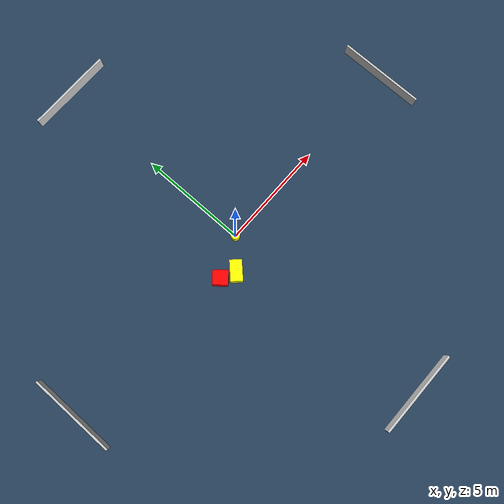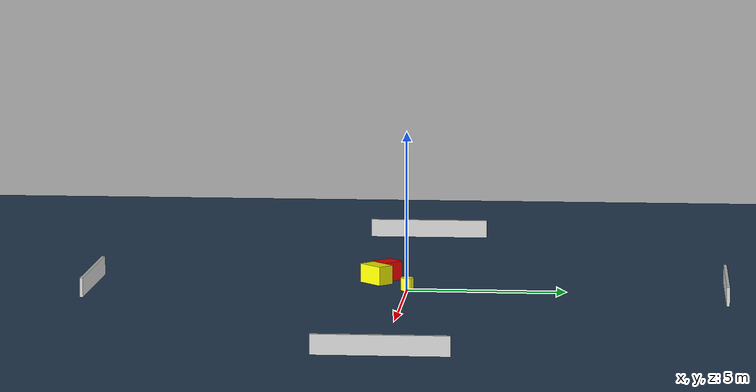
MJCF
<?xml version="1.0" ?>
<mujoco model="generated_environment">
  <option timestep="0.01" integrator="RK4" cone="elliptic"/>
  <default>
    <geom density="1"/>
  </default>
  <asset>
    <texture builtin="gradient" height="3072" name="skybox" rgb1="0.3 0.5 0.7" rgb2="0 0 0" type="skybox" width="512"/>
    <texture builtin="checker" height="300" name="groundplane" rgb1="0.2 0.3 0.4" rgb2="0.1 0.2 0.3" type="2d" width="300"/>
    <material name="groundplane" reflectance="0.2" texrepeat="5 5" texture="groundplane"/>
  </asset>
  <worldbody>
    <light dir="0 0 -1" directional="true" pos="0 0 1.5"/>
    <geom condim="3" friction="0.5 0.005 0.001" material="groundplane" name="floor" pos="0 0 0" size="0 0 0.05" type="plane"/>
    <body name="walls">
      <geom name="wall_1" condim="4" pos="-10.0 0.0 0.3" rgba="0.800000011920929 0.800000011920929 0.800000011920929 1.0" size="0.05 2.0 0.3" type="box"/>
      <geom name="wall_2" condim="4" pos="10.0 0.0 0.3" rgba="0.800000011920929 0.800000011920929 0.800000011920929 1.0" size="0.05 2.0 0.3" type="box"/>
      <geom name="wall_3" condim="4" pos="0.0 -10.0 0.3" rgba="0.800000011920929 0.800000011920929 0.800000011920929 1.0" size="2.0 0.05 0.3" type="box"/>
      <geom name="wall_4" condim="4" pos="0.0 10.0 0.3" rgba="0.800000011920929 0.800000011920929 0.800000011920929 1.0" size="2.0 0.05 0.3" type="box"/>
    </body>
    <body name="robot">
      <joint name="joint_x" type="slide" pos="0 0 0" axis="1 0 0"/>
      <joint name="joint_y" type="slide" pos="0 0 0" axis="0 1 0"/>
      <geom name="robot" type="cylinder" pos="0.0 0.0 0.2" size="0.2 0.2 0.0" mass="5.0" friction="1.0 0.005 0.0001" condim="4" rgba="1.0 1.0 0.0 1.0"/>
    </body>
    <body name="obstacle_1_movable">
      <geom name="obstacle_1_movable" condim="4" pos="-1.1512955308136343 -1.0659641769127495 0.3" euler="0 0 314.69207622616494" friction="0.0 0.005 0.001" rgba="1.0 1.0 0.0 1.0" size="0.2717373306371639 0.47085380031499324 0.3" type="box" mass="0.1"/>
      <joint type="free"/>
    </body>
    <body name="obstacle_2_static">
      <geom name="obstacle_2_static" condim="4" pos="-1.8226503460348418 -0.7612905678813945 0.3" euler="0 0 310.38736138811544" friction="0.0 0.005 0.001" rgba="1.0 0.0 0.0 1.0" size="0.3404947124984258 0.32299523447614714 0.3" type="box"/>
    </body>
  </worldbody>
  <actuator>
    <motor name="actuator_x" joint="joint_x" gear="1" ctrlrange="-1 1"/>
    <motor name="actuator_y" joint="joint_y" gear="1" ctrlrange="-1 1"/>
  </actuator>
</mujoco>
